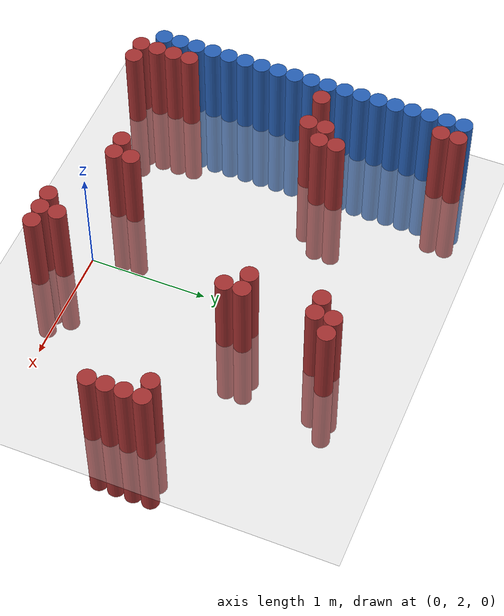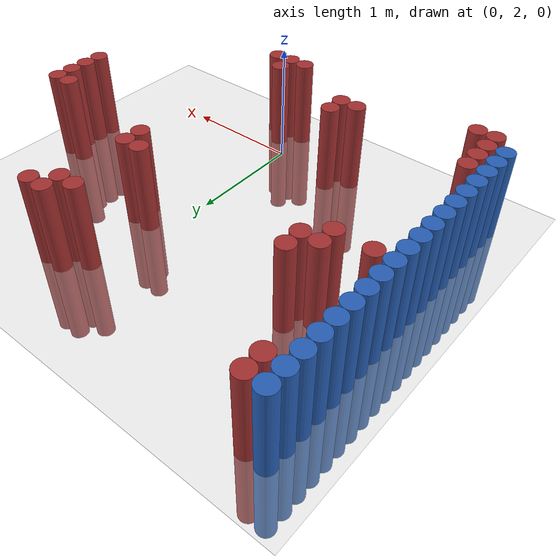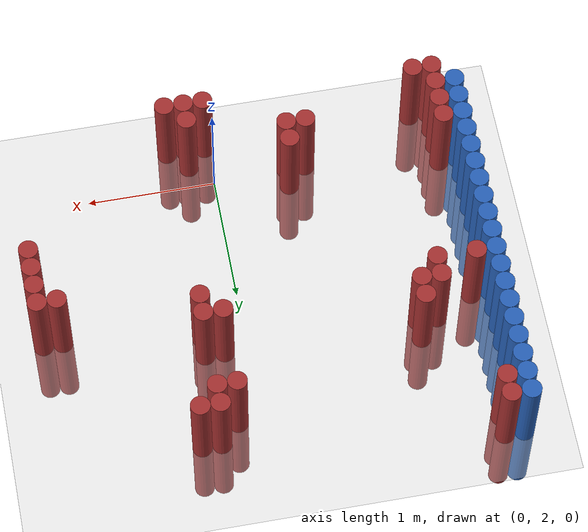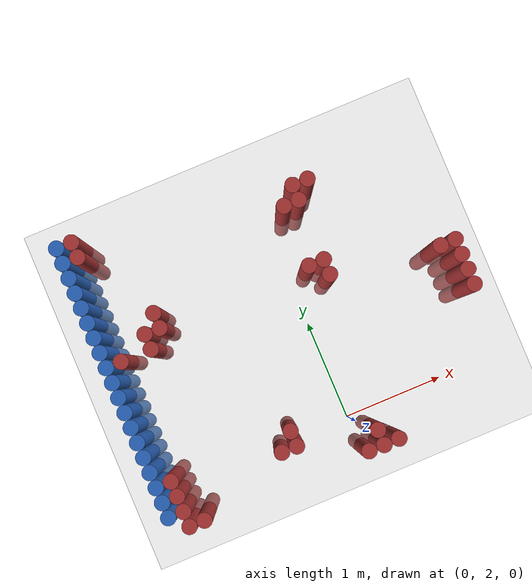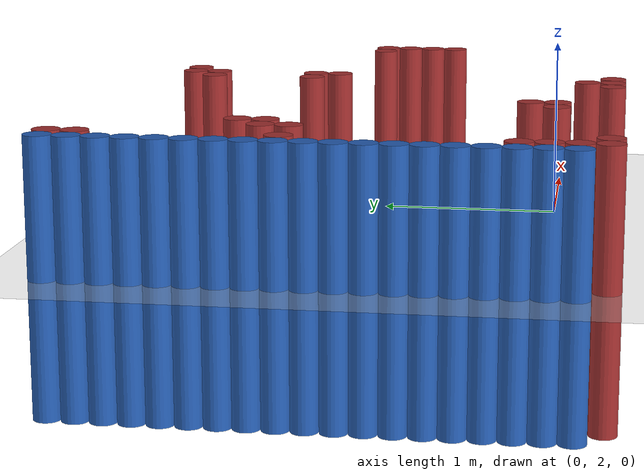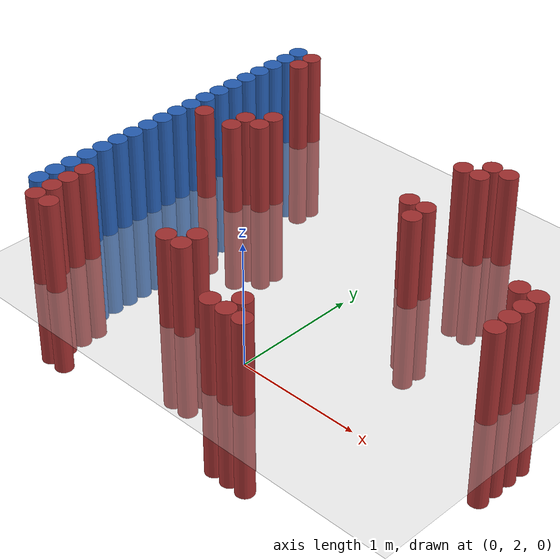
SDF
<sdf version="1.6">
 <world name="default">
  <model name="ground_plane">
   <static>1</static>
   <link name="link">
    <collision name="collision">
     <geometry><plane><normal>0 0 1</normal><size>100 100</size></plane></geometry>
     <surface><friction><ode><mu>100</mu><mu2>50</mu2></ode></friction></surface>
    </collision>
    <visual name="visual">
     <cast_shadows>0</cast_shadows>
     <geometry><plane><normal>0 0 1</normal><size>100 100</size></plane></geometry>
     <material>
      <script><uri>file://media/materials/scripts/gazebo.material</uri><name>Gazebo/Grey</name></script>
     </material>
    </visual>
   </link>
  </model>
  <model name="unit_cylinder_107">
   <static>1</static>
   <pose>-1.925000 1.825000 0.000000 0.000000 0.000000 0.000000</pose>
   <link name="link">
    <inertial>
     <mass>1</mass>
     <inertia><ixx>0.145833</ixx><ixy>0</ixy><ixz>0</ixz><iyy>0.145833</iyy><iyz>0</iyz><izz>0.125</izz></inertia>
    </inertial>
    <collision name="collision">
     <geometry><cylinder><radius>0.075000</radius><length>1.5</length></cylinder></geometry>
    </collision>
    <visual name="visual">
     <geometry><cylinder><radius>0.075000</radius><length>1.5</length></cylinder></geometry>
     <material>
      <ambient>0.152000 0.379000 0.720000 1</ambient>
      <diffuse>0.152000 0.379000 0.720000 1</diffuse>
     </material>
     <material>
      <script><name>Gazebo/Grey</name><uri>file://media/materials/scripts/gazebo.material</uri></script>
     </material>
    </visual>
   </link>
  </model>
  <model name="unit_cylinder_108">
   <static>1</static>
   <pose>-1.925000 1.975000 0.000000 0.000000 0.000000 0.000000</pose>
   <link name="link">
    <inertial>
     <mass>1</mass>
     <inertia><ixx>0.145833</ixx><ixy>0</ixy><ixz>0</ixz><iyy>0.145833</iyy><iyz>0</iyz><izz>0.125</izz></inertia>
    </inertial>
    <collision name="collision">
     <geometry><cylinder><radius>0.075000</radius><length>1.5</length></cylinder></geometry>
    </collision>
    <visual name="visual">
     <geometry><cylinder><radius>0.075000</radius><length>1.5</length></cylinder></geometry>
     <material>
      <ambient>0.152000 0.379000 0.720000 1</ambient>
      <diffuse>0.152000 0.379000 0.720000 1</diffuse>
     </material>
     <material>
      <script><name>Gazebo/Grey</name><uri>file://media/materials/scripts/gazebo.material</uri></script>
     </material>
    </visual>
   </link>
  </model>
  <model name="unit_cylinder_109">
   <static>1</static>
   <pose>-1.925000 2.125000 0.000000 0.000000 0.000000 0.000000</pose>
   <link name="link">
    <inertial>
     <mass>1</mass>
     <inertia><ixx>0.145833</ixx><ixy>0</ixy><ixz>0</ixz><iyy>0.145833</iyy><iyz>0</iyz><izz>0.125</izz></inertia>
    </inertial>
    <collision name="collision">
     <geometry><cylinder><radius>0.075000</radius><length>1.5</length></cylinder></geometry>
    </collision>
    <visual name="visual">
     <geometry><cylinder><radius>0.075000</radius><length>1.5</length></cylinder></geometry>
     <material>
      <ambient>0.152000 0.379000 0.720000 1</ambient>
      <diffuse>0.152000 0.379000 0.720000 1</diffuse>
     </material>
     <material>
      <script><name>Gazebo/Grey</name><uri>file://media/materials/scripts/gazebo.material</uri></script>
     </material>
    </visual>
   </link>
  </model>
  <model name="unit_cylinder_110">
   <static>1</static>
   <pose>-1.925000 2.275000 0.000000 0.000000 0.000000 0.000000</pose>
   <link name="link">
    <inertial>
     <mass>1</mass>
     <inertia><ixx>0.145833</ixx><ixy>0</ixy><ixz>0</ixz><iyy>0.145833</iyy><iyz>0</iyz><izz>0.125</izz></inertia>
    </inertial>
    <collision name="collision">
     <geometry><cylinder><radius>0.075000</radius><length>1.5</length></cylinder></geometry>
    </collision>
    <visual name="visual">
     <geometry><cylinder><radius>0.075000</radius><length>1.5</length></cylinder></geometry>
     <material>
      <ambient>0.152000 0.379000 0.720000 1</ambient>
      <diffuse>0.152000 0.379000 0.720000 1</diffuse>
     </material>
     <material>
      <script><name>Gazebo/Grey</name><uri>file://media/materials/scripts/gazebo.material</uri></script>
     </material>
    </visual>
   </link>
  </model>
  <model name="unit_cylinder_111">
   <static>1</static>
   <pose>-1.925000 2.425000 0.000000 0.000000 0.000000 0.000000</pose>
   <link name="link">
    <inertial>
     <mass>1</mass>
     <inertia><ixx>0.145833</ixx><ixy>0</ixy><ixz>0</ixz><iyy>0.145833</iyy><iyz>0</iyz><izz>0.125</izz></inertia>
    </inertial>
    <collision name="collision">
     <geometry><cylinder><radius>0.075000</radius><length>1.5</length></cylinder></geometry>
    </collision>
    <visual name="visual">
     <geometry><cylinder><radius>0.075000</radius><length>1.5</length></cylinder></geometry>
     <material>
      <ambient>0.152000 0.379000 0.720000 1</ambient>
      <diffuse>0.152000 0.379000 0.720000 1</diffuse>
     </material>
     <material>
      <script><name>Gazebo/Grey</name><uri>file://media/materials/scripts/gazebo.material</uri></script>
     </material>
    </visual>
   </link>
  </model>
  <model name="unit_cylinder_112">
   <static>1</static>
   <pose>-1.925000 2.575000 0.000000 0.000000 0.000000 0.000000</pose>
   <link name="link">
    <inertial>
     <mass>1</mass>
     <inertia><ixx>0.145833</ixx><ixy>0</ixy><ixz>0</ixz><iyy>0.145833</iyy><iyz>0</iyz><izz>0.125</izz></inertia>
    </inertial>
    <collision name="collision">
     <geometry><cylinder><radius>0.075000</radius><length>1.5</length></cylinder></geometry>
    </collision>
    <visual name="visual">
     <geometry><cylinder><radius>0.075000</radius><length>1.5</length></cylinder></geometry>
     <material>
      <ambient>0.152000 0.379000 0.720000 1</ambient>
      <diffuse>0.152000 0.379000 0.720000 1</diffuse>
     </material>
     <material>
      <script><name>Gazebo/Grey</name><uri>file://media/materials/scripts/gazebo.material</uri></script>
     </material>
    </visual>
   </link>
  </model>
  <model name="unit_cylinder_113">
   <static>1</static>
   <pose>-1.925000 2.725000 0.000000 0.000000 0.000000 0.000000</pose>
   <link name="link">
    <inertial>
     <mass>1</mass>
     <inertia><ixx>0.145833</ixx><ixy>0</ixy><ixz>0</ixz><iyy>0.145833</iyy><iyz>0</iyz><izz>0.125</izz></inertia>
    </inertial>
    <collision name="collision">
     <geometry><cylinder><radius>0.075000</radius><length>1.5</length></cylinder></geometry>
    </collision>
    <visual name="visual">
     <geometry><cylinder><radius>0.075000</radius><length>1.5</length></cylinder></geometry>
     <material>
      <ambient>0.152000 0.379000 0.720000 1</ambient>
      <diffuse>0.152000 0.379000 0.720000 1</diffuse>
     </material>
     <material>
      <script><name>Gazebo/Grey</name><uri>file://media/materials/scripts/gazebo.material</uri></script>
     </material>
    </visual>
   </link>
  </model>
  <model name="unit_cylinder_114">
   <static>1</static>
   <pose>-1.925000 2.875000 0.000000 0.000000 0.000000 0.000000</pose>
   <link name="link">
    <inertial>
     <mass>1</mass>
     <inertia><ixx>0.145833</ixx><ixy>0</ixy><ixz>0</ixz><iyy>0.145833</iyy><iyz>0</iyz><izz>0.125</izz></inertia>
    </inertial>
    <collision name="collision">
     <geometry><cylinder><radius>0.075000</radius><length>1.5</length></cylinder></geometry>
    </collision>
    <visual name="visual">
     <geometry><cylinder><radius>0.075000</radius><length>1.5</length></cylinder></geometry>
     <material>
      <ambient>0.152000 0.379000 0.720000 1</ambient>
      <diffuse>0.152000 0.379000 0.720000 1</diffuse>
     </material>
     <material>
      <script><name>Gazebo/Grey</name><uri>file://media/materials/scripts/gazebo.material</uri></script>
     </material>
    </visual>
   </link>
  </model>
  <model name="unit_cylinder_115">
   <static>1</static>
   <pose>-1.925000 3.025000 0.000000 0.000000 0.000000 0.000000</pose>
   <link name="link">
    <inertial>
     <mass>1</mass>
     <inertia><ixx>0.145833</ixx><ixy>0</ixy><ixz>0</ixz><iyy>0.145833</iyy><iyz>0</iyz><izz>0.125</izz></inertia>
    </inertial>
    <collision name="collision">
     <geometry><cylinder><radius>0.075000</radius><length>1.5</length></cylinder></geometry>
    </collision>
    <visual name="visual">
     <geometry><cylinder><radius>0.075000</radius><length>1.5</length></cylinder></geometry>
     <material>
      <ambient>0.152000 0.379000 0.720000 1</ambient>
      <diffuse>0.152000 0.379000 0.720000 1</diffuse>
     </material>
     <material>
      <script><name>Gazebo/Grey</name><uri>file://media/materials/scripts/gazebo.material</uri></script>
     </material>
    </visual>
   </link>
  </model>
  <model name="unit_cylinder_116">
   <static>1</static>
   <pose>-1.925000 3.175000 0.000000 0.000000 0.000000 0.000000</pose>
   <link name="link">
    <inertial>
     <mass>1</mass>
     <inertia><ixx>0.145833</ixx><ixy>0</ixy><ixz>0</ixz><iyy>0.145833</iyy><iyz>0</iyz><izz>0.125</izz></inertia>
    </inertial>
    <collision name="collision">
     <geometry><cylinder><radius>0.075000</radius><length>1.5</length></cylinder></geometry>
    </collision>
    <visual name="visual">
     <geometry><cylinder><radius>0.075000</radius><length>1.5</length></cylinder></geometry>
     <material>
      <ambient>0.152000 0.379000 0.720000 1</ambient>
      <diffuse>0.152000 0.379000 0.720000 1</diffuse>
     </material>
     <material>
      <script><name>Gazebo/Grey</name><uri>file://media/materials/scripts/gazebo.material</uri></script>
     </material>
    </visual>
   </link>
  </model>
  <model name="unit_cylinder_117">
   <static>1</static>
   <pose>-1.925000 3.325000 0.000000 0.000000 0.000000 0.000000</pose>
   <link name="link">
    <inertial>
     <mass>1</mass>
     <inertia><ixx>0.145833</ixx><ixy>0</ixy><ixz>0</ixz><iyy>0.145833</iyy><iyz>0</iyz><izz>0.125</izz></inertia>
    </inertial>
    <collision name="collision">
     <geometry><cylinder><radius>0.075000</radius><length>1.5</length></cylinder></geometry>
    </collision>
    <visual name="visual">
     <geometry><cylinder><radius>0.075000</radius><length>1.5</length></cylinder></geometry>
     <material>
      <ambient>0.152000 0.379000 0.720000 1</ambient>
      <diffuse>0.152000 0.379000 0.720000 1</diffuse>
     </material>
     <material>
      <script><name>Gazebo/Grey</name><uri>file://media/materials/scripts/gazebo.material</uri></script>
     </material>
    </visual>
   </link>
  </model>
  <model name="unit_cylinder_118">
   <static>1</static>
   <pose>-1.925000 3.475000 0.000000 0.000000 0.000000 0.000000</pose>
   <link name="link">
    <inertial>
     <mass>1</mass>
     <inertia><ixx>0.145833</ixx><ixy>0</ixy><ixz>0</ixz><iyy>0.145833</iyy><iyz>0</iyz><izz>0.125</izz></inertia>
    </inertial>
    <collision name="collision">
     <geometry><cylinder><radius>0.075000</radius><length>1.5</length></cylinder></geometry>
    </collision>
    <visual name="visual">
     <geometry><cylinder><radius>0.075000</radius><length>1.5</length></cylinder></geometry>
     <material>
      <ambient>0.152000 0.379000 0.720000 1</ambient>
      <diffuse>0.152000 0.379000 0.720000 1</diffuse>
     </material>
     <material>
      <script><name>Gazebo/Grey</name><uri>file://media/materials/scripts/gazebo.material</uri></script>
     </material>
    </visual>
   </link>
  </model>
  <model name="unit_cylinder_119">
   <static>1</static>
   <pose>-1.925000 3.625000 0.000000 0.000000 0.000000 0.000000</pose>
   <link name="link">
    <inertial>
     <mass>1</mass>
     <inertia><ixx>0.145833</ixx><ixy>0</ixy><ixz>0</ixz><iyy>0.145833</iyy><iyz>0</iyz><izz>0.125</izz></inertia>
    </inertial>
    <collision name="collision">
     <geometry><cylinder><radius>0.075000</radius><length>1.5</length></cylinder></geometry>
    </collision>
    <visual name="visual">
     <geometry><cylinder><radius>0.075000</radius><length>1.5</length></cylinder></geometry>
     <material>
      <ambient>0.152000 0.379000 0.720000 1</ambient>
      <diffuse>0.152000 0.379000 0.720000 1</diffuse>
     </material>
     <material>
      <script><name>Gazebo/Grey</name><uri>file://media/materials/scripts/gazebo.material</uri></script>
     </material>
    </visual>
   </link>
  </model>
  <model name="unit_cylinder_120">
   <static>1</static>
   <pose>-1.925000 3.775000 0.000000 0.000000 0.000000 0.000000</pose>
   <link name="link">
    <inertial>
     <mass>1</mass>
     <inertia><ixx>0.145833</ixx><ixy>0</ixy><ixz>0</ixz><iyy>0.145833</iyy><iyz>0</iyz><izz>0.125</izz></inertia>
    </inertial>
    <collision name="collision">
     <geometry><cylinder><radius>0.075000</radius><length>1.5</length></cylinder></geometry>
    </collision>
    <visual name="visual">
     <geometry><cylinder><radius>0.075000</radius><length>1.5</length></cylinder></geometry>
     <material>
      <ambient>0.152000 0.379000 0.720000 1</ambient>
      <diffuse>0.152000 0.379000 0.720000 1</diffuse>
     </material>
     <material>
      <script><name>Gazebo/Grey</name><uri>file://media/materials/scripts/gazebo.material</uri></script>
     </material>
    </visual>
   </link>
  </model>
  <model name="unit_cylinder_121">
   <static>1</static>
   <pose>-1.925000 3.925000 0.000000 0.000000 0.000000 0.000000</pose>
   <link name="link">
    <inertial>
     <mass>1</mass>
     <inertia><ixx>0.145833</ixx><ixy>0</ixy><ixz>0</ixz><iyy>0.145833</iyy><iyz>0</iyz><izz>0.125</izz></inertia>
    </inertial>
    <collision name="collision">
     <geometry><cylinder><radius>0.075000</radius><length>1.5</length></cylinder></geometry>
    </collision>
    <visual name="visual">
     <geometry><cylinder><radius>0.075000</radius><length>1.5</length></cylinder></geometry>
     <material>
      <ambient>0.152000 0.379000 0.720000 1</ambient>
      <diffuse>0.152000 0.379000 0.720000 1</diffuse>
     </material>
     <material>
      <script><name>Gazebo/Grey</name><uri>file://media/materials/scripts/gazebo.material</uri></script>
     </material>
    </visual>
   </link>
  </model>
  <model name="unit_cylinder_122">
   <static>1</static>
   <pose>-1.925000 4.075000 0.000000 0.000000 0.000000 0.000000</pose>
   <link name="link">
    <inertial>
     <mass>1</mass>
     <inertia><ixx>0.145833</ixx><ixy>0</ixy><ixz>0</ixz><iyy>0.145833</iyy><iyz>0</iyz><izz>0.125</izz></inertia>
    </inertial>
    <collision name="collision">
     <geometry><cylinder><radius>0.075000</radius><length>1.5</length></cylinder></geometry>
    </collision>
    <visual name="visual">
     <geometry><cylinder><radius>0.075000</radius><length>1.5</length></cylinder></geometry>
     <material>
      <ambient>0.152000 0.379000 0.720000 1</ambient>
      <diffuse>0.152000 0.379000 0.720000 1</diffuse>
     </material>
     <material>
      <script><name>Gazebo/Grey</name><uri>file://media/materials/scripts/gazebo.material</uri></script>
     </material>
    </visual>
   </link>
  </model>
  <model name="unit_cylinder_123">
   <static>1</static>
   <pose>-1.925000 4.225000 0.000000 0.000000 0.000000 0.000000</pose>
   <link name="link">
    <inertial>
     <mass>1</mass>
     <inertia><ixx>0.145833</ixx><ixy>0</ixy><ixz>0</ixz><iyy>0.145833</iyy><iyz>0</iyz><izz>0.125</izz></inertia>
    </inertial>
    <collision name="collision">
     <geometry><cylinder><radius>0.075000</radius><length>1.5</length></cylinder></geometry>
    </collision>
    <visual name="visual">
     <geometry><cylinder><radius>0.075000</radius><length>1.5</length></cylinder></geometry>
     <material>
      <ambient>0.152000 0.379000 0.720000 1</ambient>
      <diffuse>0.152000 0.379000 0.720000 1</diffuse>
     </material>
     <material>
      <script><name>Gazebo/Grey</name><uri>file://media/materials/scripts/gazebo.material</uri></script>
     </material>
    </visual>
   </link>
  </model>
  <model name="unit_cylinder_124">
   <static>1</static>
   <pose>-1.925000 4.375000 0.000000 0.000000 0.000000 0.000000</pose>
   <link name="link">
    <inertial>
     <mass>1</mass>
     <inertia><ixx>0.145833</ixx><ixy>0</ixy><ixz>0</ixz><iyy>0.145833</iyy><iyz>0</iyz><izz>0.125</izz></inertia>
    </inertial>
    <collision name="collision">
     <geometry><cylinder><radius>0.075000</radius><length>1.5</length></cylinder></geometry>
    </collision>
    <visual name="visual">
     <geometry><cylinder><radius>0.075000</radius><length>1.5</length></cylinder></geometry>
     <material>
      <ambient>0.152000 0.379000 0.720000 1</ambient>
      <diffuse>0.152000 0.379000 0.720000 1</diffuse>
     </material>
     <material>
      <script><name>Gazebo/Grey</name><uri>file://media/materials/scripts/gazebo.material</uri></script>
     </material>
    </visual>
   </link>
  </model>
  <model name="unit_cylinder_125">
   <static>1</static>
   <pose>-1.925000 4.525000 0.000000 0.000000 0.000000 0.000000</pose>
   <link name="link">
    <inertial>
     <mass>1</mass>
     <inertia><ixx>0.145833</ixx><ixy>0</ixy><ixz>0</ixz><iyy>0.145833</iyy><iyz>0</iyz><izz>0.125</izz></inertia>
    </inertial>
    <collision name="collision">
     <geometry><cylinder><radius>0.075000</radius><length>1.5</length></cylinder></geometry>
    </collision>
    <visual name="visual">
     <geometry><cylinder><radius>0.075000</radius><length>1.5</length></cylinder></geometry>
     <material>
      <ambient>0.152000 0.379000 0.720000 1</ambient>
      <diffuse>0.152000 0.379000 0.720000 1</diffuse>
     </material>
     <material>
      <script><name>Gazebo/Grey</name><uri>file://media/materials/scripts/gazebo.material</uri></script>
     </material>
    </visual>
   </link>
  </model>
  <model name="unit_cylinder_131">
   <static>1</static>
   <pose>-1.775000 1.675000 0.000000 0.000000 0.000000 0.000000</pose>
   <link name="link">
    <inertial>
     <mass>1</mass>
     <inertia><ixx>0.145833</ixx><ixy>0</ixy><ixz>0</ixz><iyy>0.145833</iyy><iyz>0</iyz><izz>0.125</izz></inertia>
    </inertial>
    <collision name="collision">
     <geometry><cylinder><radius>0.075000</radius><length>1.5</length></cylinder></geometry>
    </collision>
    <visual name="visual">
     <geometry><cylinder><radius>0.075000</radius><length>1.5</length></cylinder></geometry>
     <material>
      <ambient>0.648000 0.192000 0.192000 1</ambient>
      <diffuse>0.648000 0.192000 0.192000 1</diffuse>
     </material>
     <material>
      <script><name>Gazebo/Grey</name><uri>file://media/materials/scripts/gazebo.material</uri></script>
     </material>
    </visual>
   </link>
  </model>
  <model name="unit_cylinder_132">
   <static>1</static>
   <pose>-1.775000 1.825000 0.000000 0.000000 0.000000 0.000000</pose>
   <link name="link">
    <inertial>
     <mass>1</mass>
     <inertia><ixx>0.145833</ixx><ixy>0</ixy><ixz>0</ixz><iyy>0.145833</iyy><iyz>0</iyz><izz>0.125</izz></inertia>
    </inertial>
    <collision name="collision">
     <geometry><cylinder><radius>0.075000</radius><length>1.5</length></cylinder></geometry>
    </collision>
    <visual name="visual">
     <geometry><cylinder><radius>0.075000</radius><length>1.5</length></cylinder></geometry>
     <material>
      <ambient>0.648000 0.192000 0.192000 1</ambient>
      <diffuse>0.648000 0.192000 0.192000 1</diffuse>
     </material>
     <material>
      <script><name>Gazebo/Grey</name><uri>file://media/materials/scripts/gazebo.material</uri></script>
     </material>
    </visual>
   </link>
  </model>
  <model name="unit_cylinder_133">
   <static>1</static>
   <pose>-1.775000 1.975000 0.000000 0.000000 0.000000 0.000000</pose>
   <link name="link">
    <inertial>
     <mass>1</mass>
     <inertia><ixx>0.145833</ixx><ixy>0</ixy><ixz>0</ixz><iyy>0.145833</iyy><iyz>0</iyz><izz>0.125</izz></inertia>
    </inertial>
    <collision name="collision">
     <geometry><cylinder><radius>0.075000</radius><length>1.5</length></cylinder></geometry>
    </collision>
    <visual name="visual">
     <geometry><cylinder><radius>0.075000</radius><length>1.5</length></cylinder></geometry>
     <material>
      <ambient>0.648000 0.192000 0.192000 1</ambient>
      <diffuse>0.648000 0.192000 0.192000 1</diffuse>
     </material>
     <material>
      <script><name>Gazebo/Grey</name><uri>file://media/materials/scripts/gazebo.material</uri></script>
     </material>
    </visual>
   </link>
  </model>
  <model name="unit_cylinder_134">
   <static>1</static>
   <pose>-1.775000 2.125000 0.000000 0.000000 0.000000 0.000000</pose>
   <link name="link">
    <inertial>
     <mass>1</mass>
     <inertia><ixx>0.145833</ixx><ixy>0</ixy><ixz>0</ixz><iyy>0.145833</iyy><iyz>0</iyz><izz>0.125</izz></inertia>
    </inertial>
    <collision name="collision">
     <geometry><cylinder><radius>0.075000</radius><length>1.5</length></cylinder></geometry>
    </collision>
    <visual name="visual">
     <geometry><cylinder><radius>0.075000</radius><length>1.5</length></cylinder></geometry>
     <material>
      <ambient>0.648000 0.192000 0.192000 1</ambient>
      <diffuse>0.648000 0.192000 0.192000 1</diffuse>
     </material>
     <material>
      <script><name>Gazebo/Grey</name><uri>file://media/materials/scripts/gazebo.material</uri></script>
     </material>
    </visual>
   </link>
  </model>
  <model name="unit_cylinder_135">
   <static>1</static>
   <pose>-1.775000 3.325000 0.000000 0.000000 0.000000 0.000000</pose>
   <link name="link">
    <inertial>
     <mass>1</mass>
     <inertia><ixx>0.145833</ixx><ixy>0</ixy><ixz>0</ixz><iyy>0.145833</iyy><iyz>0</iyz><izz>0.125</izz></inertia>
    </inertial>
    <collision name="collision">
     <geometry><cylinder><radius>0.075000</radius><length>1.5</length></cylinder></geometry>
    </collision>
    <visual name="visual">
     <geometry><cylinder><radius>0.075000</radius><length>1.5</length></cylinder></geometry>
     <material>
      <ambient>0.648000 0.192000 0.192000 1</ambient>
      <diffuse>0.648000 0.192000 0.192000 1</diffuse>
     </material>
     <material>
      <script><name>Gazebo/Grey</name><uri>file://media/materials/scripts/gazebo.material</uri></script>
     </material>
    </visual>
   </link>
  </model>
  <model name="unit_cylinder_136">
   <static>1</static>
   <pose>-1.775000 4.375000 0.000000 0.000000 0.000000 0.000000</pose>
   <link name="link">
    <inertial>
     <mass>1</mass>
     <inertia><ixx>0.145833</ixx><ixy>0</ixy><ixz>0</ixz><iyy>0.145833</iyy><iyz>0</iyz><izz>0.125</izz></inertia>
    </inertial>
    <collision name="collision">
     <geometry><cylinder><radius>0.075000</radius><length>1.5</length></cylinder></geometry>
    </collision>
    <visual name="visual">
     <geometry><cylinder><radius>0.075000</radius><length>1.5</length></cylinder></geometry>
     <material>
      <ambient>0.648000 0.192000 0.192000 1</ambient>
      <diffuse>0.648000 0.192000 0.192000 1</diffuse>
     </material>
     <material>
      <script><name>Gazebo/Grey</name><uri>file://media/materials/scripts/gazebo.material</uri></script>
     </material>
    </visual>
   </link>
  </model>
  <model name="unit_cylinder_137">
   <static>1</static>
   <pose>-1.775000 4.525000 0.000000 0.000000 0.000000 0.000000</pose>
   <link name="link">
    <inertial>
     <mass>1</mass>
     <inertia><ixx>0.145833</ixx><ixy>0</ixy><ixz>0</ixz><iyy>0.145833</iyy><iyz>0</iyz><izz>0.125</izz></inertia>
    </inertial>
    <collision name="collision">
     <geometry><cylinder><radius>0.075000</radius><length>1.5</length></cylinder></geometry>
    </collision>
    <visual name="visual">
     <geometry><cylinder><radius>0.075000</radius><length>1.5</length></cylinder></geometry>
     <material>
      <ambient>0.648000 0.192000 0.192000 1</ambient>
      <diffuse>0.648000 0.192000 0.192000 1</diffuse>
     </material>
     <material>
      <script><name>Gazebo/Grey</name><uri>file://media/materials/scripts/gazebo.material</uri></script>
     </material>
    </visual>
   </link>
  </model>
  <model name="unit_cylinder_144">
   <static>1</static>
   <pose>-1.625000 1.675000 0.000000 0.000000 0.000000 0.000000</pose>
   <link name="link">
    <inertial>
     <mass>1</mass>
     <inertia><ixx>0.145833</ixx><ixy>0</ixy><ixz>0</ixz><iyy>0.145833</iyy><iyz>0</iyz><izz>0.125</izz></inertia>
    </inertial>
    <collision name="collision">
     <geometry><cylinder><radius>0.075000</radius><length>1.5</length></cylinder></geometry>
    </collision>
    <visual name="visual">
     <geometry><cylinder><radius>0.075000</radius><length>1.5</length></cylinder></geometry>
     <material>
      <ambient>0.648000 0.192000 0.192000 1</ambient>
      <diffuse>0.648000 0.192000 0.192000 1</diffuse>
     </material>
     <material>
      <script><name>Gazebo/Grey</name><uri>file://media/materials/scripts/gazebo.material</uri></script>
     </material>
    </visual>
   </link>
  </model>
  <model name="unit_cylinder_148">
   <static>1</static>
   <pose>-1.475000 3.325000 0.000000 0.000000 0.000000 0.000000</pose>
   <link name="link">
    <inertial>
     <mass>1</mass>
     <inertia><ixx>0.145833</ixx><ixy>0</ixy><ixz>0</ixz><iyy>0.145833</iyy><iyz>0</iyz><izz>0.125</izz></inertia>
    </inertial>
    <collision name="collision">
     <geometry><cylinder><radius>0.075000</radius><length>1.5</length></cylinder></geometry>
    </collision>
    <visual name="visual">
     <geometry><cylinder><radius>0.075000</radius><length>1.5</length></cylinder></geometry>
     <material>
      <ambient>0.648000 0.192000 0.192000 1</ambient>
      <diffuse>0.648000 0.192000 0.192000 1</diffuse>
     </material>
     <material>
      <script><name>Gazebo/Grey</name><uri>file://media/materials/scripts/gazebo.material</uri></script>
     </material>
    </visual>
   </link>
  </model>
  <model name="unit_cylinder_149">
   <static>1</static>
   <pose>-1.475000 3.475000 0.000000 0.000000 0.000000 0.000000</pose>
   <link name="link">
    <inertial>
     <mass>1</mass>
     <inertia><ixx>0.145833</ixx><ixy>0</ixy><ixz>0</ixz><iyy>0.145833</iyy><iyz>0</iyz><izz>0.125</izz></inertia>
    </inertial>
    <collision name="collision">
     <geometry><cylinder><radius>0.075000</radius><length>1.5</length></cylinder></geometry>
    </collision>
    <visual name="visual">
     <geometry><cylinder><radius>0.075000</radius><length>1.5</length></cylinder></geometry>
     <material>
      <ambient>0.648000 0.192000 0.192000 1</ambient>
      <diffuse>0.648000 0.192000 0.192000 1</diffuse>
     </material>
     <material>
      <script><name>Gazebo/Grey</name><uri>file://media/materials/scripts/gazebo.material</uri></script>
     </material>
    </visual>
   </link>
  </model>
  <model name="unit_cylinder_150">
   <static>1</static>
   <pose>-1.325000 3.475000 0.000000 0.000000 0.000000 0.000000</pose>
   <link name="link">
    <inertial>
     <mass>1</mass>
     <inertia><ixx>0.145833</ixx><ixy>0</ixy><ixz>0</ixz><iyy>0.145833</iyy><iyz>0</iyz><izz>0.125</izz></inertia>
    </inertial>
    <collision name="collision">
     <geometry><cylinder><radius>0.075000</radius><length>1.5</length></cylinder></geometry>
    </collision>
    <visual name="visual">
     <geometry><cylinder><radius>0.075000</radius><length>1.5</length></cylinder></geometry>
     <material>
      <ambient>0.648000 0.192000 0.192000 1</ambient>
      <diffuse>0.648000 0.192000 0.192000 1</diffuse>
     </material>
     <material>
      <script><name>Gazebo/Grey</name><uri>file://media/materials/scripts/gazebo.material</uri></script>
     </material>
    </visual>
   </link>
  </model>
  <model name="unit_cylinder_151">
   <static>1</static>
   <pose>-1.325000 3.625000 0.000000 0.000000 0.000000 0.000000</pose>
   <link name="link">
    <inertial>
     <mass>1</mass>
     <inertia><ixx>0.145833</ixx><ixy>0</ixy><ixz>0</ixz><iyy>0.145833</iyy><iyz>0</iyz><izz>0.125</izz></inertia>
    </inertial>
    <collision name="collision">
     <geometry><cylinder><radius>0.075000</radius><length>1.5</length></cylinder></geometry>
    </collision>
    <visual name="visual">
     <geometry><cylinder><radius>0.075000</radius><length>1.5</length></cylinder></geometry>
     <material>
      <ambient>0.648000 0.192000 0.192000 1</ambient>
      <diffuse>0.648000 0.192000 0.192000 1</diffuse>
     </material>
     <material>
      <script><name>Gazebo/Grey</name><uri>file://media/materials/scripts/gazebo.material</uri></script>
     </material>
    </visual>
   </link>
  </model>
  <model name="unit_cylinder_152">
   <static>1</static>
   <pose>-0.725000 1.975000 0.000000 0.000000 0.000000 0.000000</pose>
   <link name="link">
    <inertial>
     <mass>1</mass>
     <inertia><ixx>0.145833</ixx><ixy>0</ixy><ixz>0</ixz><iyy>0.145833</iyy><iyz>0</iyz><izz>0.125</izz></inertia>
    </inertial>
    <collision name="collision">
     <geometry><cylinder><radius>0.075000</radius><length>1.5</length></cylinder></geometry>
    </collision>
    <visual name="visual">
     <geometry><cylinder><radius>0.075000</radius><length>1.5</length></cylinder></geometry>
     <material>
      <ambient>0.648000 0.192000 0.192000 1</ambient>
      <diffuse>0.648000 0.192000 0.192000 1</diffuse>
     </material>
     <material>
      <script><name>Gazebo/Grey</name><uri>file://media/materials/scripts/gazebo.material</uri></script>
     </material>
    </visual>
   </link>
  </model>
  <model name="unit_cylinder_153">
   <static>1</static>
   <pose>-0.575000 1.975000 0.000000 0.000000 0.000000 0.000000</pose>
   <link name="link">
    <inertial>
     <mass>1</mass>
     <inertia><ixx>0.145833</ixx><ixy>0</ixy><ixz>0</ixz><iyy>0.145833</iyy><iyz>0</iyz><izz>0.125</izz></inertia>
    </inertial>
    <collision name="collision">
     <geometry><cylinder><radius>0.075000</radius><length>1.5</length></cylinder></geometry>
    </collision>
    <visual name="visual">
     <geometry><cylinder><radius>0.075000</radius><length>1.5</length></cylinder></geometry>
     <material>
      <ambient>0.648000 0.192000 0.192000 1</ambient>
      <diffuse>0.648000 0.192000 0.192000 1</diffuse>
     </material>
     <material>
      <script><name>Gazebo/Grey</name><uri>file://media/materials/scripts/gazebo.material</uri></script>
     </material>
    </visual>
   </link>
  </model>
  <model name="unit_cylinder_154">
   <static>1</static>
   <pose>-0.575000 2.125000 0.000000 0.000000 0.000000 0.000000</pose>
   <link name="link">
    <inertial>
     <mass>1</mass>
     <inertia><ixx>0.145833</ixx><ixy>0</ixy><ixz>0</ixz><iyy>0.145833</iyy><iyz>0</iyz><izz>0.125</izz></inertia>
    </inertial>
    <collision name="collision">
     <geometry><cylinder><radius>0.075000</radius><length>1.5</length></cylinder></geometry>
    </collision>
    <visual name="visual">
     <geometry><cylinder><radius>0.075000</radius><length>1.5</length></cylinder></geometry>
     <material>
      <ambient>0.648000 0.192000 0.192000 1</ambient>
      <diffuse>0.648000 0.192000 0.192000 1</diffuse>
     </material>
     <material>
      <script><name>Gazebo/Grey</name><uri>file://media/materials/scripts/gazebo.material</uri></script>
     </material>
    </visual>
   </link>
  </model>
  <model name="unit_cylinder_161">
   <static>1</static>
   <pose>0.025000 1.675000 0.000000 0.000000 0.000000 0.000000</pose>
   <link name="link">
    <inertial>
     <mass>1</mass>
     <inertia><ixx>0.145833</ixx><ixy>0</ixy><ixz>0</ixz><iyy>0.145833</iyy><iyz>0</iyz><izz>0.125</izz></inertia>
    </inertial>
    <collision name="collision">
     <geometry><cylinder><radius>0.075000</radius><length>1.5</length></cylinder></geometry>
    </collision>
    <visual name="visual">
     <geometry><cylinder><radius>0.075000</radius><length>1.5</length></cylinder></geometry>
     <material>
      <ambient>0.648000 0.192000 0.192000 1</ambient>
      <diffuse>0.648000 0.192000 0.192000 1</diffuse>
     </material>
     <material>
      <script><name>Gazebo/Grey</name><uri>file://media/materials/scripts/gazebo.material</uri></script>
     </material>
    </visual>
   </link>
  </model>
  <model name="unit_cylinder_164">
   <static>1</static>
   <pose>0.175000 1.675000 0.000000 0.000000 0.000000 0.000000</pose>
   <link name="link">
    <inertial>
     <mass>1</mass>
     <inertia><ixx>0.145833</ixx><ixy>0</ixy><ixz>0</ixz><iyy>0.145833</iyy><iyz>0</iyz><izz>0.125</izz></inertia>
    </inertial>
    <collision name="collision">
     <geometry><cylinder><radius>0.075000</radius><length>1.5</length></cylinder></geometry>
    </collision>
    <visual name="visual">
     <geometry><cylinder><radius>0.075000</radius><length>1.5</length></cylinder></geometry>
     <material>
      <ambient>0.648000 0.192000 0.192000 1</ambient>
      <diffuse>0.648000 0.192000 0.192000 1</diffuse>
     </material>
     <material>
      <script><name>Gazebo/Grey</name><uri>file://media/materials/scripts/gazebo.material</uri></script>
     </material>
    </visual>
   </link>
  </model>
  <model name="unit_cylinder_165">
   <static>1</static>
   <pose>0.175000 1.825000 0.000000 0.000000 0.000000 0.000000</pose>
   <link name="link">
    <inertial>
     <mass>1</mass>
     <inertia><ixx>0.145833</ixx><ixy>0</ixy><ixz>0</ixz><iyy>0.145833</iyy><iyz>0</iyz><izz>0.125</izz></inertia>
    </inertial>
    <collision name="collision">
     <geometry><cylinder><radius>0.075000</radius><length>1.5</length></cylinder></geometry>
    </collision>
    <visual name="visual">
     <geometry><cylinder><radius>0.075000</radius><length>1.5</length></cylinder></geometry>
     <material>
      <ambient>0.648000 0.192000 0.192000 1</ambient>
      <diffuse>0.648000 0.192000 0.192000 1</diffuse>
     </material>
     <material>
      <script><name>Gazebo/Grey</name><uri>file://media/materials/scripts/gazebo.material</uri></script>
     </material>
    </visual>
   </link>
  </model>
  <model name="unit_cylinder_166">
   <static>1</static>
   <pose>0.175000 3.475000 0.000000 0.000000 0.000000 0.000000</pose>
   <link name="link">
    <inertial>
     <mass>1</mass>
     <inertia><ixx>0.145833</ixx><ixy>0</ixy><ixz>0</ixz><iyy>0.145833</iyy><iyz>0</iyz><izz>0.125</izz></inertia>
    </inertial>
    <collision name="collision">
     <geometry><cylinder><radius>0.075000</radius><length>1.5</length></cylinder></geometry>
    </collision>
    <visual name="visual">
     <geometry><cylinder><radius>0.075000</radius><length>1.5</length></cylinder></geometry>
     <material>
      <ambient>0.648000 0.192000 0.192000 1</ambient>
      <diffuse>0.648000 0.192000 0.192000 1</diffuse>
     </material>
     <material>
      <script><name>Gazebo/Grey</name><uri>file://media/materials/scripts/gazebo.material</uri></script>
     </material>
    </visual>
   </link>
  </model>
  <model name="unit_cylinder_167">
   <static>1</static>
   <pose>0.175000 4.075000 0.000000 0.000000 0.000000 0.000000</pose>
   <link name="link">
    <inertial>
     <mass>1</mass>
     <inertia><ixx>0.145833</ixx><ixy>0</ixy><ixz>0</ixz><iyy>0.145833</iyy><iyz>0</iyz><izz>0.125</izz></inertia>
    </inertial>
    <collision name="collision">
     <geometry><cylinder><radius>0.075000</radius><length>1.5</length></cylinder></geometry>
    </collision>
    <visual name="visual">
     <geometry><cylinder><radius>0.075000</radius><length>1.5</length></cylinder></geometry>
     <material>
      <ambient>0.648000 0.192000 0.192000 1</ambient>
      <diffuse>0.648000 0.192000 0.192000 1</diffuse>
     </material>
     <material>
      <script><name>Gazebo/Grey</name><uri>file://media/materials/scripts/gazebo.material</uri></script>
     </material>
    </visual>
   </link>
  </model>
  <model name="unit_cylinder_170">
   <static>1</static>
   <pose>0.325000 1.675000 0.000000 0.000000 0.000000 0.000000</pose>
   <link name="link">
    <inertial>
     <mass>1</mass>
     <inertia><ixx>0.145833</ixx><ixy>0</ixy><ixz>0</ixz><iyy>0.145833</iyy><iyz>0</iyz><izz>0.125</izz></inertia>
    </inertial>
    <collision name="collision">
     <geometry><cylinder><radius>0.075000</radius><length>1.5</length></cylinder></geometry>
    </collision>
    <visual name="visual">
     <geometry><cylinder><radius>0.075000</radius><length>1.5</length></cylinder></geometry>
     <material>
      <ambient>0.648000 0.192000 0.192000 1</ambient>
      <diffuse>0.648000 0.192000 0.192000 1</diffuse>
     </material>
     <material>
      <script><name>Gazebo/Grey</name><uri>file://media/materials/scripts/gazebo.material</uri></script>
     </material>
    </visual>
   </link>
  </model>
  <model name="unit_cylinder_171">
   <static>1</static>
   <pose>0.325000 3.325000 0.000000 0.000000 0.000000 0.000000</pose>
   <link name="link">
    <inertial>
     <mass>1</mass>
     <inertia><ixx>0.145833</ixx><ixy>0</ixy><ixz>0</ixz><iyy>0.145833</iyy><iyz>0</iyz><izz>0.125</izz></inertia>
    </inertial>
    <collision name="collision">
     <geometry><cylinder><radius>0.075000</radius><length>1.5</length></cylinder></geometry>
    </collision>
    <visual name="visual">
     <geometry><cylinder><radius>0.075000</radius><length>1.5</length></cylinder></geometry>
     <material>
      <ambient>0.648000 0.192000 0.192000 1</ambient>
      <diffuse>0.648000 0.192000 0.192000 1</diffuse>
     </material>
     <material>
      <script><name>Gazebo/Grey</name><uri>file://media/materials/scripts/gazebo.material</uri></script>
     </material>
    </visual>
   </link>
  </model>
  <model name="unit_cylinder_172">
   <static>1</static>
   <pose>0.325000 3.475000 0.000000 0.000000 0.000000 0.000000</pose>
   <link name="link">
    <inertial>
     <mass>1</mass>
     <inertia><ixx>0.145833</ixx><ixy>0</ixy><ixz>0</ixz><iyy>0.145833</iyy><iyz>0</iyz><izz>0.125</izz></inertia>
    </inertial>
    <collision name="collision">
     <geometry><cylinder><radius>0.075000</radius><length>1.5</length></cylinder></geometry>
    </collision>
    <visual name="visual">
     <geometry><cylinder><radius>0.075000</radius><length>1.5</length></cylinder></geometry>
     <material>
      <ambient>0.648000 0.192000 0.192000 1</ambient>
      <diffuse>0.648000 0.192000 0.192000 1</diffuse>
     </material>
     <material>
      <script><name>Gazebo/Grey</name><uri>file://media/materials/scripts/gazebo.material</uri></script>
     </material>
    </visual>
   </link>
  </model>
  <model name="unit_cylinder_173">
   <static>1</static>
   <pose>0.325000 4.075000 0.000000 0.000000 0.000000 0.000000</pose>
   <link name="link">
    <inertial>
     <mass>1</mass>
     <inertia><ixx>0.145833</ixx><ixy>0</ixy><ixz>0</ixz><iyy>0.145833</iyy><iyz>0</iyz><izz>0.125</izz></inertia>
    </inertial>
    <collision name="collision">
     <geometry><cylinder><radius>0.075000</radius><length>1.5</length></cylinder></geometry>
    </collision>
    <visual name="visual">
     <geometry><cylinder><radius>0.075000</radius><length>1.5</length></cylinder></geometry>
     <material>
      <ambient>0.648000 0.192000 0.192000 1</ambient>
      <diffuse>0.648000 0.192000 0.192000 1</diffuse>
     </material>
     <material>
      <script><name>Gazebo/Grey</name><uri>file://media/materials/scripts/gazebo.material</uri></script>
     </material>
    </visual>
   </link>
  </model>
  <model name="unit_cylinder_174">
   <static>1</static>
   <pose>0.325000 4.225000 0.000000 0.000000 0.000000 0.000000</pose>
   <link name="link">
    <inertial>
     <mass>1</mass>
     <inertia><ixx>0.145833</ixx><ixy>0</ixy><ixz>0</ixz><iyy>0.145833</iyy><iyz>0</iyz><izz>0.125</izz></inertia>
    </inertial>
    <collision name="collision">
     <geometry><cylinder><radius>0.075000</radius><length>1.5</length></cylinder></geometry>
    </collision>
    <visual name="visual">
     <geometry><cylinder><radius>0.075000</radius><length>1.5</length></cylinder></geometry>
     <material>
      <ambient>0.648000 0.192000 0.192000 1</ambient>
      <diffuse>0.648000 0.192000 0.192000 1</diffuse>
     </material>
     <material>
      <script><name>Gazebo/Grey</name><uri>file://media/materials/scripts/gazebo.material</uri></script>
     </material>
    </visual>
   </link>
  </model>
  <model name="unit_cylinder_176">
   <static>1</static>
   <pose>0.475000 4.225000 0.000000 0.000000 0.000000 0.000000</pose>
   <link name="link">
    <inertial>
     <mass>1</mass>
     <inertia><ixx>0.145833</ixx><ixy>0</ixy><ixz>0</ixz><iyy>0.145833</iyy><iyz>0</iyz><izz>0.125</izz></inertia>
    </inertial>
    <collision name="collision">
     <geometry><cylinder><radius>0.075000</radius><length>1.5</length></cylinder></geometry>
    </collision>
    <visual name="visual">
     <geometry><cylinder><radius>0.075000</radius><length>1.5</length></cylinder></geometry>
     <material>
      <ambient>0.648000 0.192000 0.192000 1</ambient>
      <diffuse>0.648000 0.192000 0.192000 1</diffuse>
     </material>
     <material>
      <script><name>Gazebo/Grey</name><uri>file://media/materials/scripts/gazebo.material</uri></script>
     </material>
    </visual>
   </link>
  </model>
  <model name="unit_cylinder_183">
   <static>1</static>
   <pose>1.375000 3.175000 0.000000 0.000000 0.000000 0.000000</pose>
   <link name="link">
    <inertial>
     <mass>1</mass>
     <inertia><ixx>0.145833</ixx><ixy>0</ixy><ixz>0</ixz><iyy>0.145833</iyy><iyz>0</iyz><izz>0.125</izz></inertia>
    </inertial>
    <collision name="collision">
     <geometry><cylinder><radius>0.075000</radius><length>1.5</length></cylinder></geometry>
    </collision>
    <visual name="visual">
     <geometry><cylinder><radius>0.075000</radius><length>1.5</length></cylinder></geometry>
     <material>
      <ambient>0.648000 0.192000 0.192000 1</ambient>
      <diffuse>0.648000 0.192000 0.192000 1</diffuse>
     </material>
     <material>
      <script><name>Gazebo/Grey</name><uri>file://media/materials/scripts/gazebo.material</uri></script>
     </material>
    </visual>
   </link>
  </model>
  <model name="unit_cylinder_184">
   <static>1</static>
   <pose>1.525000 2.725000 0.000000 0.000000 0.000000 0.000000</pose>
   <link name="link">
    <inertial>
     <mass>1</mass>
     <inertia><ixx>0.145833</ixx><ixy>0</ixy><ixz>0</ixz><iyy>0.145833</iyy><iyz>0</iyz><izz>0.125</izz></inertia>
    </inertial>
    <collision name="collision">
     <geometry><cylinder><radius>0.075000</radius><length>1.5</length></cylinder></geometry>
    </collision>
    <visual name="visual">
     <geometry><cylinder><radius>0.075000</radius><length>1.5</length></cylinder></geometry>
     <material>
      <ambient>0.648000 0.192000 0.192000 1</ambient>
      <diffuse>0.648000 0.192000 0.192000 1</diffuse>
     </material>
     <material>
      <script><name>Gazebo/Grey</name><uri>file://media/materials/scripts/gazebo.material</uri></script>
     </material>
    </visual>
   </link>
  </model>
  <model name="unit_cylinder_185">
   <static>1</static>
   <pose>1.525000 2.875000 0.000000 0.000000 0.000000 0.000000</pose>
   <link name="link">
    <inertial>
     <mass>1</mass>
     <inertia><ixx>0.145833</ixx><ixy>0</ixy><ixz>0</ixz><iyy>0.145833</iyy><iyz>0</iyz><izz>0.125</izz></inertia>
    </inertial>
    <collision name="collision">
     <geometry><cylinder><radius>0.075000</radius><length>1.5</length></cylinder></geometry>
    </collision>
    <visual name="visual">
     <geometry><cylinder><radius>0.075000</radius><length>1.5</length></cylinder></geometry>
     <material>
      <ambient>0.648000 0.192000 0.192000 1</ambient>
      <diffuse>0.648000 0.192000 0.192000 1</diffuse>
     </material>
     <material>
      <script><name>Gazebo/Grey</name><uri>file://media/materials/scripts/gazebo.material</uri></script>
     </material>
    </visual>
   </link>
  </model>
  <model name="unit_cylinder_186">
   <static>1</static>
   <pose>1.525000 3.025000 0.000000 0.000000 0.000000 0.000000</pose>
   <link name="link">
    <inertial>
     <mass>1</mass>
     <inertia><ixx>0.145833</ixx><ixy>0</ixy><ixz>0</ixz><iyy>0.145833</iyy><iyz>0</iyz><izz>0.125</izz></inertia>
    </inertial>
    <collision name="collision">
     <geometry><cylinder><radius>0.075000</radius><length>1.5</length></cylinder></geometry>
    </collision>
    <visual name="visual">
     <geometry><cylinder><radius>0.075000</radius><length>1.5</length></cylinder></geometry>
     <material>
      <ambient>0.648000 0.192000 0.192000 1</ambient>
      <diffuse>0.648000 0.192000 0.192000 1</diffuse>
     </material>
     <material>
      <script><name>Gazebo/Grey</name><uri>file://media/materials/scripts/gazebo.material</uri></script>
     </material>
    </visual>
   </link>
  </model>
  <model name="unit_cylinder_187">
   <static>1</static>
   <pose>1.525000 3.175000 0.000000 0.000000 0.000000 0.000000</pose>
   <link name="link">
    <inertial>
     <mass>1</mass>
     <inertia><ixx>0.145833</ixx><ixy>0</ixy><ixz>0</ixz><iyy>0.145833</iyy><iyz>0</iyz><izz>0.125</izz></inertia>
    </inertial>
    <collision name="collision">
     <geometry><cylinder><radius>0.075000</radius><length>1.5</length></cylinder></geometry>
    </collision>
    <visual name="visual">
     <geometry><cylinder><radius>0.075000</radius><length>1.5</length></cylinder></geometry>
     <material>
      <ambient>0.648000 0.192000 0.192000 1</ambient>
      <diffuse>0.648000 0.192000 0.192000 1</diffuse>
     </material>
     <material>
      <script><name>Gazebo/Grey</name><uri>file://media/materials/scripts/gazebo.material</uri></script>
     </material>
    </visual>
   </link>
  </model>
 </world>
</sdf>
